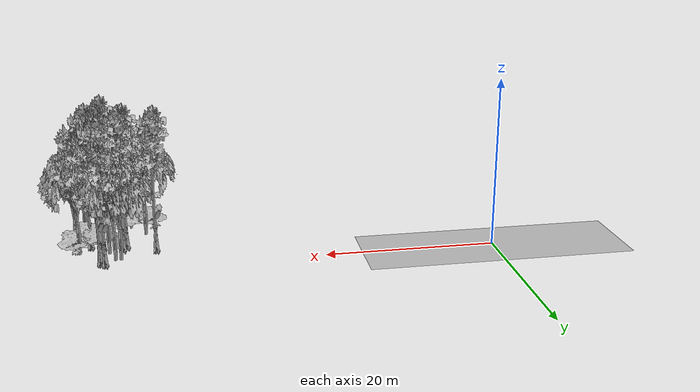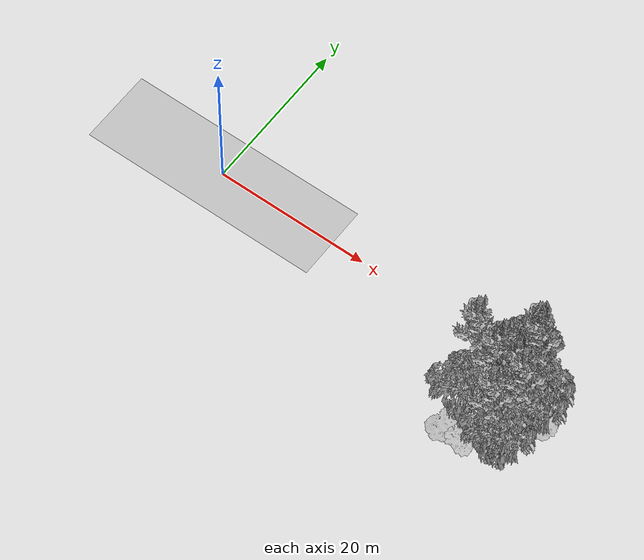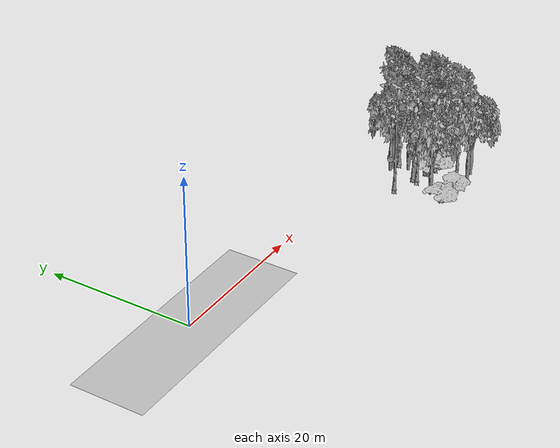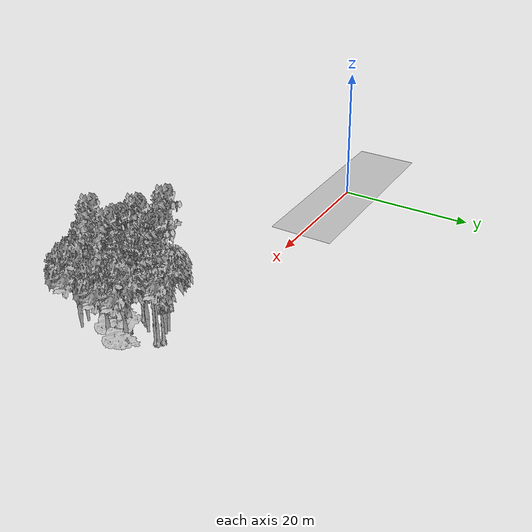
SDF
<sdf version="1.7">
 <world name="default">
  <model name="ground_plane">
   <static>1</static>
   <link name="link">
    <collision name="collision">
     <pose>-50 0 0 0 -0 0</pose>
     <geometry><plane><normal>0 0 1</normal><size>100 100</size></plane></geometry>
     <surface><contact><ode><min_depth>0.01</min_depth><max_vel>0</max_vel></ode></contact></surface>
    </collision>
    <visual name="grass">
     <cast_shadows>0</cast_shadows>
     <geometry>
      <mesh>
       <scale>0.5814285714285714 0.18142857142857144 0.1</scale>
       <uri>file://grass_plane/meshes/grass_plane.dae</uri>
      </mesh>
     </geometry>
    </visual>
   </link>
  </model>
  <model name="Tree 9">
   <static>1</static>
   <pose>43.18519281754021 -2.7200800898165927 0 1.57079 -0 0</pose>
   <link name="link">
    <collision name="collision">
     <geometry><mesh><scale>3.5 5 3.5</scale><uri>model://tree_2/meshes/tree_2.obj</uri></mesh></geometry>
    </collision>
    <visual name="visual">
     <geometry><mesh><scale>3.5 5 3.5</scale><uri>model://tree_2/meshes/tree_2.obj</uri></mesh></geometry>
    </visual>
   </link>
  </model>
  <model name="Tree 11">
   <static>1</static>
   <pose>45.75317328389755 -6.967052973280747 0 1.57079 -0 0</pose>
   <link name="link">
    <collision name="collision">
     <geometry><mesh><scale>3.5 5 3.5</scale><uri>model://tree_9/meshes/tree_9.obj</uri></mesh></geometry>
    </collision>
    <visual name="visual">
     <geometry><mesh><scale>3.5 5 3.5</scale><uri>model://tree_9/meshes/tree_9.obj</uri></mesh></geometry>
    </visual>
   </link>
  </model>
  <model name="Tree 17">
   <static>1</static>
   <pose>39.75413066038645 -12.15380586839474 0 1.57079 -0 0</pose>
   <link name="link">
    <collision name="collision">
     <geometry><mesh><scale>4 2.5 4</scale><uri>model://tree_1/meshes/tree_1.obj</uri></mesh></geometry>
    </collision>
    <visual name="visual">
     <geometry><mesh><scale>4 2.5 4</scale><uri>model://tree_1/meshes/tree_1.obj</uri></mesh></geometry>
    </visual>
   </link>
  </model>
  <model name="Tree 25">
   <static>1</static>
   <pose>44.594107028790646 -4.715149866623674 0 1.57079 -0 0</pose>
   <link name="link">
    <collision name="collision">
     <geometry><mesh><scale>3.5 5 3.5</scale><uri>model://tree_2/meshes/tree_2.obj</uri></mesh></geometry>
    </collision>
    <visual name="visual">
     <geometry><mesh><scale>3.5 5 3.5</scale><uri>model://tree_2/meshes/tree_2.obj</uri></mesh></geometry>
    </visual>
   </link>
  </model>
  <model name="Tree 69">
   <static>1</static>
   <pose>47.998186532055044 -5.084905187486985 0 1.57079 -0 0</pose>
   <link name="link">
    <collision name="collision">
     <geometry><mesh><scale>3.5 5 3.5</scale><uri>model://tree_2/meshes/tree_2.obj</uri></mesh></geometry>
    </collision>
    <visual name="visual">
     <geometry><mesh><scale>3.5 5 3.5</scale><uri>model://tree_2/meshes/tree_2.obj</uri></mesh></geometry>
    </visual>
   </link>
  </model>
  <model name="Tree 74">
   <static>1</static>
   <pose>48.54354386803371 -7.29271898305652 0 1.57079 -0 0</pose>
   <link name="link">
    <collision name="collision">
     <geometry><mesh><scale>3.5 5 3.5</scale><uri>model://tree_2/meshes/tree_2.obj</uri></mesh></geometry>
    </collision>
    <visual name="visual">
     <geometry><mesh><scale>3.5 5 3.5</scale><uri>model://tree_2/meshes/tree_2.obj</uri></mesh></geometry>
    </visual>
   </link>
  </model>
  <model name="Tree 77">
   <static>1</static>
   <pose>42.822056752822306 -6.971824709320684 0 1.57079 -0 0</pose>
   <link name="link">
    <collision name="collision">
     <geometry><mesh><scale>3.5 5 3.5</scale><uri>model://tree_9/meshes/tree_9.obj</uri></mesh></geometry>
    </collision>
    <visual name="visual">
     <geometry><mesh><scale>3.5 5 3.5</scale><uri>model://tree_9/meshes/tree_9.obj</uri></mesh></geometry>
    </visual>
   </link>
  </model>
  <model name="Tree 162">
   <static>1</static>
   <pose>45.553179009870476 -11.469469991391279 0 1.57079 -0 0</pose>
   <link name="link">
    <collision name="collision">
     <geometry><mesh><scale>3.5 5 3.5</scale><uri>model://tree_9/meshes/tree_9.obj</uri></mesh></geometry>
    </collision>
    <visual name="visual">
     <geometry><mesh><scale>3.5 5 3.5</scale><uri>model://tree_9/meshes/tree_9.obj</uri></mesh></geometry>
    </visual>
   </link>
  </model>
  <model name="Tree 168">
   <static>1</static>
   <pose>45.546693817189166 -6.863698087155578 0 1.57079 -0 0</pose>
   <link name="link">
    <collision name="collision">
     <geometry><mesh><scale>3.5 5 3.5</scale><uri>model://tree_9/meshes/tree_9.obj</uri></mesh></geometry>
    </collision>
    <visual name="visual">
     <geometry><mesh><scale>3.5 5 3.5</scale><uri>model://tree_9/meshes/tree_9.obj</uri></mesh></geometry>
    </visual>
   </link>
  </model>
  <model name="Tree 173">
   <static>1</static>
   <pose>40.55221101964807 -10.10631636982567 0 1.57079 -0 0</pose>
   <link name="link">
    <collision name="collision">
     <geometry><mesh><scale>3.5 5 3.5</scale><uri>model://tree_2/meshes/tree_2.obj</uri></mesh></geometry>
    </collision>
    <visual name="visual">
     <geometry><mesh><scale>3.5 5 3.5</scale><uri>model://tree_2/meshes/tree_2.obj</uri></mesh></geometry>
    </visual>
   </link>
  </model>
  <model name="Tree 212">
   <static>1</static>
   <pose>48.58904186386479 -5.472489232787934 0 1.57079 -0 0</pose>
   <link name="link">
    <collision name="collision">
     <geometry><mesh><scale>4 2.5 4</scale><uri>model://tree_1/meshes/tree_1.obj</uri></mesh></geometry>
    </collision>
    <visual name="visual">
     <geometry><mesh><scale>4 2.5 4</scale><uri>model://tree_1/meshes/tree_1.obj</uri></mesh></geometry>
    </visual>
   </link>
  </model>
  <model name="Tree 258">
   <static>1</static>
   <pose>39.36717664795471 -5.448548445605088 0 1.57079 -0 0</pose>
   <link name="link">
    <collision name="collision">
     <geometry><mesh><scale>3.5 5 3.5</scale><uri>model://tree_9/meshes/tree_9.obj</uri></mesh></geometry>
    </collision>
    <visual name="visual">
     <geometry><mesh><scale>3.5 5 3.5</scale><uri>model://tree_9/meshes/tree_9.obj</uri></mesh></geometry>
    </visual>
   </link>
  </model>
  <model name="Tree 263">
   <static>1</static>
   <pose>45.57748191070519 -2.424405583958375 0 1.57079 -0 0</pose>
   <link name="link">
    <collision name="collision">
     <geometry><mesh><scale>3.5 5 3.5</scale><uri>model://tree_9/meshes/tree_9.obj</uri></mesh></geometry>
    </collision>
    <visual name="visual">
     <geometry><mesh><scale>3.5 5 3.5</scale><uri>model://tree_9/meshes/tree_9.obj</uri></mesh></geometry>
    </visual>
   </link>
  </model>
  <model name="Tree 285">
   <static>1</static>
   <pose>45.64904497227255 -2.779345596588813 0 1.57079 -0 0</pose>
   <link name="link">
    <collision name="collision">
     <geometry><mesh><scale>3.5 5 3.5</scale><uri>model://tree_9/meshes/tree_9.obj</uri></mesh></geometry>
    </collision>
    <visual name="visual">
     <geometry><mesh><scale>3.5 5 3.5</scale><uri>model://tree_9/meshes/tree_9.obj</uri></mesh></geometry>
    </visual>
   </link>
  </model>
  <model name="Tree 288">
   <static>1</static>
   <pose>42.519908920957576 -12.716467443611887 0 1.57079 -0 0</pose>
   <link name="link">
    <collision name="collision">
     <geometry><mesh><scale>3 2 3</scale><uri>model://tree_3/meshes/tree_3.obj</uri></mesh></geometry>
    </collision>
    <visual name="visual">
     <geometry><mesh><scale>3 2 3</scale><uri>model://tree_3/meshes/tree_3.obj</uri></mesh></geometry>
    </visual>
   </link>
  </model>
  <model name="Tree 345">
   <static>1</static>
   <pose>43.81530230279297 -2.6572104475267917 0 1.57079 -0 0</pose>
   <link name="link">
    <collision name="collision">
     <geometry><mesh><scale>3.5 5 3.5</scale><uri>model://tree_2/meshes/tree_2.obj</uri></mesh></geometry>
    </collision>
    <visual name="visual">
     <geometry><mesh><scale>3.5 5 3.5</scale><uri>model://tree_2/meshes/tree_2.obj</uri></mesh></geometry>
    </visual>
   </link>
  </model>
  <model name="Tree 347">
   <static>1</static>
   <pose>47.898011259480825 -12.312536714459103 0 1.57079 -0 0</pose>
   <link name="link">
    <collision name="collision">
     <geometry><mesh><scale>3.5 5 3.5</scale><uri>model://tree_2/meshes/tree_2.obj</uri></mesh></geometry>
    </collision>
    <visual name="visual">
     <geometry><mesh><scale>3.5 5 3.5</scale><uri>model://tree_2/meshes/tree_2.obj</uri></mesh></geometry>
    </visual>
   </link>
  </model>
  <model name="Tree 365">
   <static>1</static>
   <pose>43.239769183825956 -6.19371836288787 0 1.57079 -0 0</pose>
   <link name="link">
    <collision name="collision">
     <geometry><mesh><scale>3.5 5 3.5</scale><uri>model://tree_9/meshes/tree_9.obj</uri></mesh></geometry>
    </collision>
    <visual name="visual">
     <geometry><mesh><scale>3.5 5 3.5</scale><uri>model://tree_9/meshes/tree_9.obj</uri></mesh></geometry>
    </visual>
   </link>
  </model>
  <model name="Tree 381">
   <static>1</static>
   <pose>47.01782115733165 -7.609642483129773 0 1.57079 -0 0</pose>
   <link name="link">
    <collision name="collision">
     <geometry><mesh><scale>3.5 5 3.5</scale><uri>model://tree_9/meshes/tree_9.obj</uri></mesh></geometry>
    </collision>
    <visual name="visual">
     <geometry><mesh><scale>3.5 5 3.5</scale><uri>model://tree_9/meshes/tree_9.obj</uri></mesh></geometry>
    </visual>
   </link>
  </model>
  <model name="Tree 383">
   <static>1</static>
   <pose>46.046228423845875 -7.36857619800106 0 1.57079 -0 0</pose>
   <link name="link">
    <collision name="collision">
     <geometry><mesh><scale>3 2 3</scale><uri>model://tree_3/meshes/tree_3.obj</uri></mesh></geometry>
    </collision>
    <visual name="visual">
     <geometry><mesh><scale>3 2 3</scale><uri>model://tree_3/meshes/tree_3.obj</uri></mesh></geometry>
    </visual>
   </link>
  </model>
  <model name="Tree 429">
   <static>1</static>
   <pose>47.11825117836898 -7.995264287380186 0 1.57079 -0 0</pose>
   <link name="link">
    <collision name="collision">
     <geometry><mesh><scale>4 2.5 4</scale><uri>model://tree_1/meshes/tree_1.obj</uri></mesh></geometry>
    </collision>
    <visual name="visual">
     <geometry><mesh><scale>4 2.5 4</scale><uri>model://tree_1/meshes/tree_1.obj</uri></mesh></geometry>
    </visual>
   </link>
  </model>
  <model name="Tree 448">
   <static>1</static>
   <pose>45.065223787004015 -2.065874105973206 0 1.57079 -0 0</pose>
   <link name="link">
    <collision name="collision">
     <geometry><mesh><scale>3.5 5 3.5</scale><uri>model://tree_9/meshes/tree_9.obj</uri></mesh></geometry>
    </collision>
    <visual name="visual">
     <geometry><mesh><scale>3.5 5 3.5</scale><uri>model://tree_9/meshes/tree_9.obj</uri></mesh></geometry>
    </visual>
   </link>
  </model>
  <model name="Tree 475">
   <static>1</static>
   <pose>46.53886974285582 -12.533575153036097 0 1.57079 -0 0</pose>
   <link name="link">
    <collision name="collision">
     <geometry><mesh><scale>3.5 5 3.5</scale><uri>model://tree_2/meshes/tree_2.obj</uri></mesh></geometry>
    </collision>
    <visual name="visual">
     <geometry><mesh><scale>3.5 5 3.5</scale><uri>model://tree_2/meshes/tree_2.obj</uri></mesh></geometry>
    </visual>
   </link>
  </model>
 </world>
</sdf>
